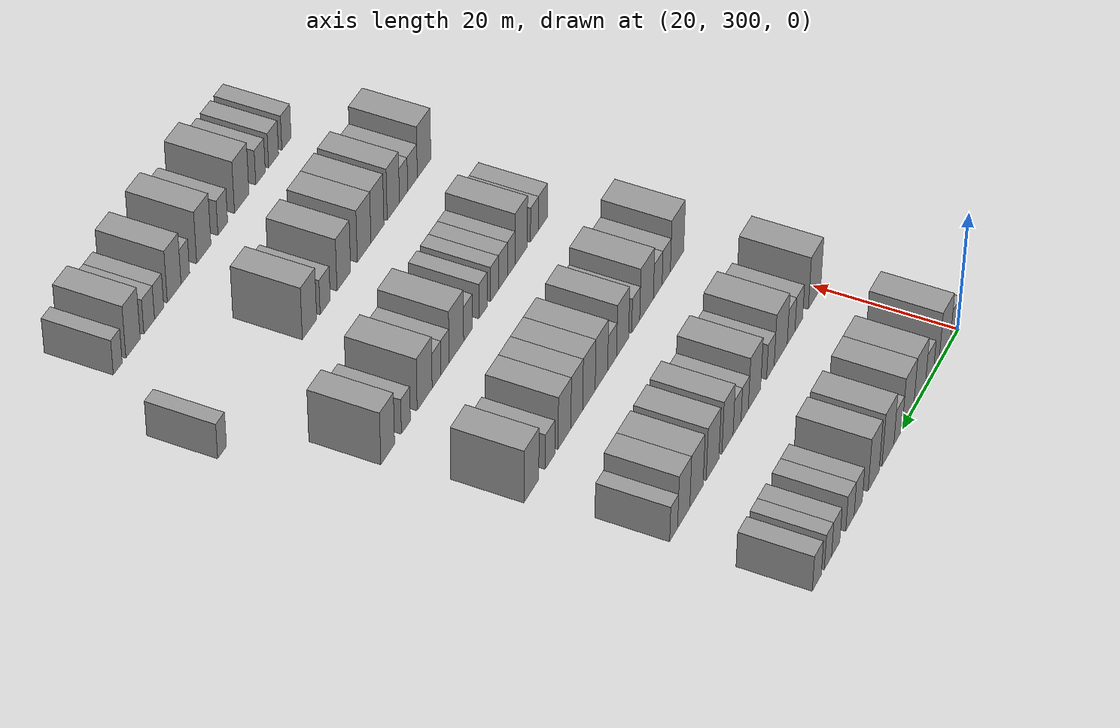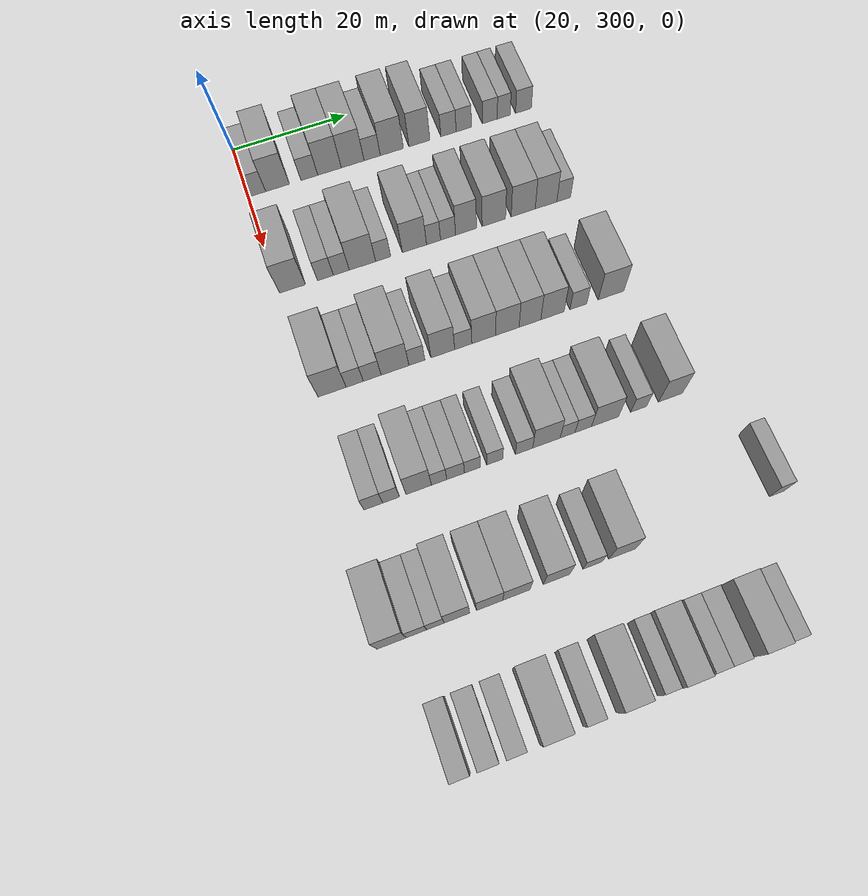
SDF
<sdf version="1.6">
 <world name="default">
  <model name="building_165">
   <static>1</static>
   <pose>25.0000 301.5888 0 0.000000 0.000000 0.000000</pose>
   <link name="link">
    <pose>0 0 3.00 0 0 0</pose>
    <collision name="collision"><geometry><box><size>10.0000 2.9189 6.0000</size></box></geometry></collision>
    <visual name="visual">
     <cast_shadows>0</cast_shadows>
     <geometry><box><size>10.0000 2.9189 6.0000</size></box></geometry>
     <material>
      <script>
       <uri>model://grey_wall/materials/scripts</uri>
       <uri>model://grey_wall/materials/textures</uri>
       <name>vrc/grey_wall</name>
      </script>
     </material>
    </visual>
   </link>
  </model>
  <model name="building_166">
   <static>1</static>
   <pose>25.0000 305.1051 0 0.000000 0.000000 0.000000</pose>
   <link name="link">
    <pose>0 0 4.50 0 0 0</pose>
    <collision name="collision"><geometry><box><size>10.0000 4.1137 9.0000</size></box></geometry></collision>
    <visual name="visual">
     <cast_shadows>0</cast_shadows>
     <geometry><box><size>10.0000 4.1137 9.0000</size></box></geometry>
     <material>
      <script>
       <uri>model://grey_wall/materials/scripts</uri>
       <uri>model://grey_wall/materials/textures</uri>
       <name>vrc/grey_wall</name>
      </script>
     </material>
    </visual>
   </link>
  </model>
  <model name="building_167">
   <static>1</static>
   <pose>25.0000 310.6389 0 0.000000 0.000000 0.000000</pose>
   <link name="link">
    <pose>0 0 3.00 0 0 0</pose>
    <collision name="collision"><geometry><box><size>10.0000 2.9540 6.0000</size></box></geometry></collision>
    <visual name="visual">
     <cast_shadows>0</cast_shadows>
     <geometry><box><size>10.0000 2.9540 6.0000</size></box></geometry>
     <material>
      <script>
       <uri>model://grey_wall/materials/scripts</uri>
       <uri>model://grey_wall/materials/textures</uri>
       <name>vrc/grey_wall</name>
      </script>
     </material>
    </visual>
   </link>
  </model>
  <model name="building_168">
   <static>1</static>
   <pose>25.0000 314.1917 0 0.000000 0.000000 0.000000</pose>
   <link name="link">
    <pose>0 0 4.50 0 0 0</pose>
    <collision name="collision"><geometry><box><size>10.0000 4.1515 9.0000</size></box></geometry></collision>
    <visual name="visual">
     <cast_shadows>0</cast_shadows>
     <geometry><box><size>10.0000 4.1515 9.0000</size></box></geometry>
     <material>
      <script>
       <uri>model://grey_wall/materials/scripts</uri>
       <uri>model://grey_wall/materials/textures</uri>
       <name>vrc/grey_wall</name>
      </script>
     </material>
    </visual>
   </link>
  </model>
  <model name="building_169">
   <static>1</static>
   <pose>25.0000 318.2860 0 0.000000 0.000000 0.000000</pose>
   <link name="link">
    <pose>0 0 4.50 0 0 0</pose>
    <collision name="collision"><geometry><box><size>10.0000 4.0372 9.0000</size></box></geometry></collision>
    <visual name="visual">
     <cast_shadows>0</cast_shadows>
     <geometry><box><size>10.0000 4.0372 9.0000</size></box></geometry>
     <material>
      <script>
       <uri>model://grey_wall/materials/scripts</uri>
       <uri>model://grey_wall/materials/textures</uri>
       <name>vrc/grey_wall</name>
      </script>
     </material>
    </visual>
   </link>
  </model>
  <model name="building_170">
   <static>1</static>
   <pose>25.0000 321.7532 0 0.000000 0.000000 0.000000</pose>
   <link name="link">
    <pose>0 0 3.00 0 0 0</pose>
    <collision name="collision"><geometry><box><size>10.0000 2.8972 6.0000</size></box></geometry></collision>
    <visual name="visual">
     <cast_shadows>0</cast_shadows>
     <geometry><box><size>10.0000 2.8972 6.0000</size></box></geometry>
     <material>
      <script>
       <uri>model://grey_wall/materials/scripts</uri>
       <uri>model://grey_wall/materials/textures</uri>
       <name>vrc/grey_wall</name>
      </script>
     </material>
    </visual>
   </link>
  </model>
  <model name="building_171">
   <static>1</static>
   <pose>25.0000 325.2684 0 0.000000 0.000000 0.000000</pose>
   <link name="link">
    <pose>0 0 4.50 0 0 0</pose>
    <collision name="collision"><geometry><box><size>10.0000 4.1330 9.0000</size></box></geometry></collision>
    <visual name="visual">
     <cast_shadows>0</cast_shadows>
     <geometry><box><size>10.0000 4.1330 9.0000</size></box></geometry>
     <material>
      <script>
       <uri>model://grey_wall/materials/scripts</uri>
       <uri>model://grey_wall/materials/textures</uri>
       <name>vrc/grey_wall</name>
      </script>
     </material>
    </visual>
   </link>
  </model>
  <model name="building_172">
   <static>1</static>
   <pose>25.0000 330.2317 0 0.000000 0.000000 0.000000</pose>
   <link name="link">
    <pose>0 0 4.50 0 0 0</pose>
    <collision name="collision"><geometry><box><size>10.0000 3.7937 9.0000</size></box></geometry></collision>
    <visual name="visual">
     <cast_shadows>0</cast_shadows>
     <geometry><box><size>10.0000 3.7937 9.0000</size></box></geometry>
     <material>
      <script>
       <uri>model://grey_wall/materials/scripts</uri>
       <uri>model://grey_wall/materials/textures</uri>
       <name>vrc/grey_wall</name>
      </script>
     </material>
    </visual>
   </link>
  </model>
  <model name="building_173">
   <static>1</static>
   <pose>25.0000 335.5223 0 0.000000 0.000000 0.000000</pose>
   <link name="link">
    <pose>0 0 3.00 0 0 0</pose>
    <collision name="collision"><geometry><box><size>10.0000 2.7874 6.0000</size></box></geometry></collision>
    <visual name="visual">
     <cast_shadows>0</cast_shadows>
     <geometry><box><size>10.0000 2.7874 6.0000</size></box></geometry>
     <material>
      <script>
       <uri>model://grey_wall/materials/scripts</uri>
       <uri>model://grey_wall/materials/textures</uri>
       <name>vrc/grey_wall</name>
      </script>
     </material>
    </visual>
   </link>
  </model>
  <model name="building_174">
   <static>1</static>
   <pose>25.0000 338.3214 0 0.000000 0.000000 0.000000</pose>
   <link name="link">
    <pose>0 0 3.00 0 0 0</pose>
    <collision name="collision"><geometry><box><size>10.0000 2.8108 6.0000</size></box></geometry></collision>
    <visual name="visual">
     <cast_shadows>0</cast_shadows>
     <geometry><box><size>10.0000 2.8108 6.0000</size></box></geometry>
     <material>
      <script>
       <uri>model://grey_wall/materials/scripts</uri>
       <uri>model://grey_wall/materials/textures</uri>
       <name>vrc/grey_wall</name>
      </script>
     </material>
    </visual>
   </link>
  </model>
  <model name="building_175">
   <static>1</static>
   <pose>25.0000 343.1128 0 0.000000 0.000000 0.000000</pose>
   <link name="link">
    <pose>0 0 3.00 0 0 0</pose>
    <collision name="collision"><geometry><box><size>10.0000 2.7720 6.0000</size></box></geometry></collision>
    <visual name="visual">
     <cast_shadows>0</cast_shadows>
     <geometry><box><size>10.0000 2.7720 6.0000</size></box></geometry>
     <material>
      <script>
       <uri>model://grey_wall/materials/scripts</uri>
       <uri>model://grey_wall/materials/textures</uri>
       <name>vrc/grey_wall</name>
      </script>
     </material>
    </visual>
   </link>
  </model>
  <model name="building_176">
   <static>1</static>
   <pose>25.0000 345.7003 0 0.000000 0.000000 0.000000</pose>
   <link name="link">
    <pose>0 0 3.00 0 0 0</pose>
    <collision name="collision"><geometry><box><size>10.0000 2.4030 6.0000</size></box></geometry></collision>
    <visual name="visual">
     <cast_shadows>0</cast_shadows>
     <geometry><box><size>10.0000 2.4030 6.0000</size></box></geometry>
     <material>
      <script>
       <uri>model://grey_wall/materials/scripts</uri>
       <uri>model://grey_wall/materials/textures</uri>
       <name>vrc/grey_wall</name>
      </script>
     </material>
    </visual>
   </link>
  </model>
  <model name="building_177">
   <static>1</static>
   <pose>25.0000 349.3713 0 0.000000 0.000000 0.000000</pose>
   <link name="link">
    <pose>0 0 3.00 0 0 0</pose>
    <collision name="collision"><geometry><box><size>10.0000 2.9388 6.0000</size></box></geometry></collision>
    <visual name="visual">
     <cast_shadows>0</cast_shadows>
     <geometry><box><size>10.0000 2.9388 6.0000</size></box></geometry>
     <material>
      <script>
       <uri>model://grey_wall/materials/scripts</uri>
       <uri>model://grey_wall/materials/textures</uri>
       <name>vrc/grey_wall</name>
      </script>
     </material>
    </visual>
   </link>
  </model>
  <model name="building_333">
   <static>1</static>
   <pose>44.0000 302.2389 0 0.000000 0.000000 0.000000</pose>
   <link name="link">
    <pose>0 0 4.50 0 0 0</pose>
    <collision name="collision"><geometry><box><size>10.0000 4.3135 9.0000</size></box></geometry></collision>
    <visual name="visual">
     <cast_shadows>0</cast_shadows>
     <geometry><box><size>10.0000 4.3135 9.0000</size></box></geometry>
     <material>
      <script>
       <uri>model://grey_wall/materials/scripts</uri>
       <uri>model://grey_wall/materials/textures</uri>
       <name>vrc/grey_wall</name>
      </script>
     </material>
    </visual>
   </link>
  </model>
  <model name="building_334">
   <static>1</static>
   <pose>44.0000 307.7300 0 0.000000 0.000000 0.000000</pose>
   <link name="link">
    <pose>0 0 3.00 0 0 0</pose>
    <collision name="collision"><geometry><box><size>10.0000 2.6686 6.0000</size></box></geometry></collision>
    <visual name="visual">
     <cast_shadows>0</cast_shadows>
     <geometry><box><size>10.0000 2.6686 6.0000</size></box></geometry>
     <material>
      <script>
       <uri>model://grey_wall/materials/scripts</uri>
       <uri>model://grey_wall/materials/textures</uri>
       <name>vrc/grey_wall</name>
      </script>
     </material>
    </visual>
   </link>
  </model>
  <model name="building_335">
   <static>1</static>
   <pose>44.0000 310.4001 0 0.000000 0.000000 0.000000</pose>
   <link name="link">
    <pose>0 0 3.00 0 0 0</pose>
    <collision name="collision"><geometry><box><size>10.0000 2.6716 6.0000</size></box></geometry></collision>
    <visual name="visual">
     <cast_shadows>0</cast_shadows>
     <geometry><box><size>10.0000 2.6716 6.0000</size></box></geometry>
     <material>
      <script>
       <uri>model://grey_wall/materials/scripts</uri>
       <uri>model://grey_wall/materials/textures</uri>
       <name>vrc/grey_wall</name>
      </script>
     </material>
    </visual>
   </link>
  </model>
  <model name="building_336">
   <static>1</static>
   <pose>44.0000 313.9701 0 0.000000 0.000000 0.000000</pose>
   <link name="link">
    <pose>0 0 4.50 0 0 0</pose>
    <collision name="collision"><geometry><box><size>10.0000 4.4685 9.0000</size></box></geometry></collision>
    <visual name="visual">
     <cast_shadows>0</cast_shadows>
     <geometry><box><size>10.0000 4.4685 9.0000</size></box></geometry>
     <material>
      <script>
       <uri>model://grey_wall/materials/scripts</uri>
       <uri>model://grey_wall/materials/textures</uri>
       <name>vrc/grey_wall</name>
      </script>
     </material>
    </visual>
   </link>
  </model>
  <model name="building_337">
   <static>1</static>
   <pose>44.0000 317.4843 0 0.000000 0.000000 0.000000</pose>
   <link name="link">
    <pose>0 0 3.00 0 0 0</pose>
    <collision name="collision"><geometry><box><size>10.0000 2.5599 6.0000</size></box></geometry></collision>
    <visual name="visual">
     <cast_shadows>0</cast_shadows>
     <geometry><box><size>10.0000 2.5599 6.0000</size></box></geometry>
     <material>
      <script>
       <uri>model://grey_wall/materials/scripts</uri>
       <uri>model://grey_wall/materials/textures</uri>
       <name>vrc/grey_wall</name>
      </script>
     </material>
    </visual>
   </link>
  </model>
  <model name="building_338">
   <static>1</static>
   <pose>44.0000 322.8418 0 0.000000 0.000000 0.000000</pose>
   <link name="link">
    <pose>0 0 4.50 0 0 0</pose>
    <collision name="collision"><geometry><box><size>10.0000 4.1550 9.0000</size></box></geometry></collision>
    <visual name="visual">
     <cast_shadows>0</cast_shadows>
     <geometry><box><size>10.0000 4.1550 9.0000</size></box></geometry>
     <material>
      <script>
       <uri>model://grey_wall/materials/scripts</uri>
       <uri>model://grey_wall/materials/textures</uri>
       <name>vrc/grey_wall</name>
      </script>
     </material>
    </visual>
   </link>
  </model>
  <model name="building_339">
   <static>1</static>
   <pose>44.0000 326.1313 0 0.000000 0.000000 0.000000</pose>
   <link name="link">
    <pose>0 0 3.00 0 0 0</pose>
    <collision name="collision"><geometry><box><size>10.0000 2.4240 6.0000</size></box></geometry></collision>
    <visual name="visual">
     <cast_shadows>0</cast_shadows>
     <geometry><box><size>10.0000 2.4240 6.0000</size></box></geometry>
     <material>
      <script>
       <uri>model://grey_wall/materials/scripts</uri>
       <uri>model://grey_wall/materials/textures</uri>
       <name>vrc/grey_wall</name>
      </script>
     </material>
    </visual>
   </link>
  </model>
  <model name="building_340">
   <static>1</static>
   <pose>44.0000 328.6502 0 0.000000 0.000000 0.000000</pose>
   <link name="link">
    <pose>0 0 3.00 0 0 0</pose>
    <collision name="collision"><geometry><box><size>10.0000 2.6138 6.0000</size></box></geometry></collision>
    <visual name="visual">
     <cast_shadows>0</cast_shadows>
     <geometry><box><size>10.0000 2.6138 6.0000</size></box></geometry>
     <material>
      <script>
       <uri>model://grey_wall/materials/scripts</uri>
       <uri>model://grey_wall/materials/textures</uri>
       <name>vrc/grey_wall</name>
      </script>
     </material>
    </visual>
   </link>
  </model>
  <model name="building_341">
   <static>1</static>
   <pose>44.0000 331.7780 0 0.000000 0.000000 0.000000</pose>
   <link name="link">
    <pose>0 0 4.50 0 0 0</pose>
    <collision name="collision"><geometry><box><size>10.0000 3.6419 9.0000</size></box></geometry></collision>
    <visual name="visual">
     <cast_shadows>0</cast_shadows>
     <geometry><box><size>10.0000 3.6419 9.0000</size></box></geometry>
     <material>
      <script>
       <uri>model://grey_wall/materials/scripts</uri>
       <uri>model://grey_wall/materials/textures</uri>
       <name>vrc/grey_wall</name>
      </script>
     </material>
    </visual>
   </link>
  </model>
  <model name="building_342">
   <static>1</static>
   <pose>44.0000 336.6580 0 0.000000 0.000000 0.000000</pose>
   <link name="link">
    <pose>0 0 4.50 0 0 0</pose>
    <collision name="collision"><geometry><box><size>10.0000 4.1180 9.0000</size></box></geometry></collision>
    <visual name="visual">
     <cast_shadows>0</cast_shadows>
     <geometry><box><size>10.0000 4.1180 9.0000</size></box></geometry>
     <material>
      <script>
       <uri>model://grey_wall/materials/scripts</uri>
       <uri>model://grey_wall/materials/textures</uri>
       <name>vrc/grey_wall</name>
      </script>
     </material>
    </visual>
   </link>
  </model>
  <model name="building_343">
   <static>1</static>
   <pose>44.0000 341.8525 0 0.000000 0.000000 0.000000</pose>
   <link name="link">
    <pose>0 0 4.50 0 0 0</pose>
    <collision name="collision"><geometry><box><size>10.0000 4.2711 9.0000</size></box></geometry></collision>
    <visual name="visual">
     <cast_shadows>0</cast_shadows>
     <geometry><box><size>10.0000 4.2711 9.0000</size></box></geometry>
     <material>
      <script>
       <uri>model://grey_wall/materials/scripts</uri>
       <uri>model://grey_wall/materials/textures</uri>
       <name>vrc/grey_wall</name>
      </script>
     </material>
    </visual>
   </link>
  </model>
  <model name="building_344">
   <static>1</static>
   <pose>44.0000 345.9261 0 0.000000 0.000000 0.000000</pose>
   <link name="link">
    <pose>0 0 4.50 0 0 0</pose>
    <collision name="collision"><geometry><box><size>10.0000 3.8761 9.0000</size></box></geometry></collision>
    <visual name="visual">
     <cast_shadows>0</cast_shadows>
     <geometry><box><size>10.0000 3.8761 9.0000</size></box></geometry>
     <material>
      <script>
       <uri>model://grey_wall/materials/scripts</uri>
       <uri>model://grey_wall/materials/textures</uri>
       <name>vrc/grey_wall</name>
      </script>
     </material>
    </visual>
   </link>
  </model>
  <model name="building_345">
   <static>1</static>
   <pose>44.0000 349.1014 0 0.000000 0.000000 0.000000</pose>
   <link name="link">
    <pose>0 0 3.00 0 0 0</pose>
    <collision name="collision"><geometry><box><size>10.0000 2.4744 6.0000</size></box></geometry></collision>
    <visual name="visual">
     <cast_shadows>0</cast_shadows>
     <geometry><box><size>10.0000 2.4744 6.0000</size></box></geometry>
     <material>
      <script>
       <uri>model://grey_wall/materials/scripts</uri>
       <uri>model://grey_wall/materials/textures</uri>
       <name>vrc/grey_wall</name>
      </script>
     </material>
    </visual>
   </link>
  </model>
  <model name="building_508">
   <static>1</static>
   <pose>63.0000 303.0617 0 0.000000 0.000000 0.000000</pose>
   <link name="link">
    <pose>0 0 4.50 0 0 0</pose>
    <collision name="collision"><geometry><box><size>10.0000 4.4870 9.0000</size></box></geometry></collision>
    <visual name="visual">
     <cast_shadows>0</cast_shadows>
     <geometry><box><size>10.0000 4.4870 9.0000</size></box></geometry>
     <material>
      <script>
       <uri>model://grey_wall/materials/scripts</uri>
       <uri>model://grey_wall/materials/textures</uri>
       <name>vrc/grey_wall</name>
      </script>
     </material>
    </visual>
   </link>
  </model>
  <model name="building_509">
   <static>1</static>
   <pose>63.0000 306.6799 0 0.000000 0.000000 0.000000</pose>
   <link name="link">
    <pose>0 0 3.00 0 0 0</pose>
    <collision name="collision"><geometry><box><size>10.0000 2.7496 6.0000</size></box></geometry></collision>
    <visual name="visual">
     <cast_shadows>0</cast_shadows>
     <geometry><box><size>10.0000 2.7496 6.0000</size></box></geometry>
     <material>
      <script>
       <uri>model://grey_wall/materials/scripts</uri>
       <uri>model://grey_wall/materials/textures</uri>
       <name>vrc/grey_wall</name>
      </script>
     </material>
    </visual>
   </link>
  </model>
  <model name="building_510">
   <static>1</static>
   <pose>63.0000 309.4983 0 0.000000 0.000000 0.000000</pose>
   <link name="link">
    <pose>0 0 3.00 0 0 0</pose>
    <collision name="collision"><geometry><box><size>10.0000 2.8872 6.0000</size></box></geometry></collision>
    <visual name="visual">
     <cast_shadows>0</cast_shadows>
     <geometry><box><size>10.0000 2.8872 6.0000</size></box></geometry>
     <material>
      <script>
       <uri>model://grey_wall/materials/scripts</uri>
       <uri>model://grey_wall/materials/textures</uri>
       <name>vrc/grey_wall</name>
      </script>
     </material>
    </visual>
   </link>
  </model>
  <model name="building_511">
   <static>1</static>
   <pose>63.0000 313.1857 0 0.000000 0.000000 0.000000</pose>
   <link name="link">
    <pose>0 0 4.50 0 0 0</pose>
    <collision name="collision"><geometry><box><size>10.0000 4.4875 9.0000</size></box></geometry></collision>
    <visual name="visual">
     <cast_shadows>0</cast_shadows>
     <geometry><box><size>10.0000 4.4875 9.0000</size></box></geometry>
     <material>
      <script>
       <uri>model://grey_wall/materials/scripts</uri>
       <uri>model://grey_wall/materials/textures</uri>
       <name>vrc/grey_wall</name>
      </script>
     </material>
    </visual>
   </link>
  </model>
  <model name="building_512">
   <static>1</static>
   <pose>63.0000 316.7316 0 0.000000 0.000000 0.000000</pose>
   <link name="link">
    <pose>0 0 3.00 0 0 0</pose>
    <collision name="collision"><geometry><box><size>10.0000 2.6043 6.0000</size></box></geometry></collision>
    <visual name="visual">
     <cast_shadows>0</cast_shadows>
     <geometry><box><size>10.0000 2.6043 6.0000</size></box></geometry>
     <material>
      <script>
       <uri>model://grey_wall/materials/scripts</uri>
       <uri>model://grey_wall/materials/textures</uri>
       <name>vrc/grey_wall</name>
      </script>
     </material>
    </visual>
   </link>
  </model>
  <model name="building_513">
   <static>1</static>
   <pose>63.0000 320.9885 0 0.000000 0.000000 0.000000</pose>
   <link name="link">
    <pose>0 0 4.50 0 0 0</pose>
    <collision name="collision"><geometry><box><size>10.0000 3.9094 9.0000</size></box></geometry></collision>
    <visual name="visual">
     <cast_shadows>0</cast_shadows>
     <geometry><box><size>10.0000 3.9094 9.0000</size></box></geometry>
     <material>
      <script>
       <uri>model://grey_wall/materials/scripts</uri>
       <uri>model://grey_wall/materials/textures</uri>
       <name>vrc/grey_wall</name>
      </script>
     </material>
    </visual>
   </link>
  </model>
  <model name="building_514">
   <static>1</static>
   <pose>63.0000 324.3630 0 0.000000 0.000000 0.000000</pose>
   <link name="link">
    <pose>0 0 3.00 0 0 0</pose>
    <collision name="collision"><geometry><box><size>10.0000 2.8396 6.0000</size></box></geometry></collision>
    <visual name="visual">
     <cast_shadows>0</cast_shadows>
     <geometry><box><size>10.0000 2.8396 6.0000</size></box></geometry>
     <material>
      <script>
       <uri>model://grey_wall/materials/scripts</uri>
       <uri>model://grey_wall/materials/textures</uri>
       <name>vrc/grey_wall</name>
      </script>
     </material>
    </visual>
   </link>
  </model>
  <model name="building_515">
   <static>1</static>
   <pose>63.0000 327.7666 0 0.000000 0.000000 0.000000</pose>
   <link name="link">
    <pose>0 0 4.50 0 0 0</pose>
    <collision name="collision"><geometry><box><size>10.0000 3.9677 9.0000</size></box></geometry></collision>
    <visual name="visual">
     <cast_shadows>0</cast_shadows>
     <geometry><box><size>10.0000 3.9677 9.0000</size></box></geometry>
     <material>
      <script>
       <uri>model://grey_wall/materials/scripts</uri>
       <uri>model://grey_wall/materials/textures</uri>
       <name>vrc/grey_wall</name>
      </script>
     </material>
    </visual>
   </link>
  </model>
  <model name="building_516">
   <static>1</static>
   <pose>63.0000 331.7200 0 0.000000 0.000000 0.000000</pose>
   <link name="link">
    <pose>0 0 4.50 0 0 0</pose>
    <collision name="collision"><geometry><box><size>10.0000 3.9392 9.0000</size></box></geometry></collision>
    <visual name="visual">
     <cast_shadows>0</cast_shadows>
     <geometry><box><size>10.0000 3.9392 9.0000</size></box></geometry>
     <material>
      <script>
       <uri>model://grey_wall/materials/scripts</uri>
       <uri>model://grey_wall/materials/textures</uri>
       <name>vrc/grey_wall</name>
      </script>
     </material>
    </visual>
   </link>
  </model>
  <model name="building_517">
   <static>1</static>
   <pose>63.0000 335.5295 0 0.000000 0.000000 0.000000</pose>
   <link name="link">
    <pose>0 0 4.50 0 0 0</pose>
    <collision name="collision"><geometry><box><size>10.0000 3.6798 9.0000</size></box></geometry></collision>
    <visual name="visual">
     <cast_shadows>0</cast_shadows>
     <geometry><box><size>10.0000 3.6798 9.0000</size></box></geometry>
     <material>
      <script>
       <uri>model://grey_wall/materials/scripts</uri>
       <uri>model://grey_wall/materials/textures</uri>
       <name>vrc/grey_wall</name>
      </script>
     </material>
    </visual>
   </link>
  </model>
  <model name="building_518">
   <static>1</static>
   <pose>63.0000 339.3479 0 0.000000 0.000000 0.000000</pose>
   <link name="link">
    <pose>0 0 4.50 0 0 0</pose>
    <collision name="collision"><geometry><box><size>10.0000 3.9569 9.0000</size></box></geometry></collision>
    <visual name="visual">
     <cast_shadows>0</cast_shadows>
     <geometry><box><size>10.0000 3.9569 9.0000</size></box></geometry>
     <material>
      <script>
       <uri>model://grey_wall/materials/scripts</uri>
       <uri>model://grey_wall/materials/textures</uri>
       <name>vrc/grey_wall</name>
      </script>
     </material>
    </visual>
   </link>
  </model>
  <model name="building_519">
   <static>1</static>
   <pose>63.0000 343.7659 0 0.000000 0.000000 0.000000</pose>
   <link name="link">
    <pose>0 0 3.00 0 0 0</pose>
    <collision name="collision"><geometry><box><size>10.0000 2.8791 6.0000</size></box></geometry></collision>
    <visual name="visual">
     <cast_shadows>0</cast_shadows>
     <geometry><box><size>10.0000 2.8791 6.0000</size></box></geometry>
     <material>
      <script>
       <uri>model://grey_wall/materials/scripts</uri>
       <uri>model://grey_wall/materials/textures</uri>
       <name>vrc/grey_wall</name>
      </script>
     </material>
    </visual>
   </link>
  </model>
  <model name="building_520">
   <static>1</static>
   <pose>63.0000 349.4359 0 0.000000 0.000000 0.000000</pose>
   <link name="link">
    <pose>0 0 4.50 0 0 0</pose>
    <collision name="collision"><geometry><box><size>10.0000 4.4609 9.0000</size></box></geometry></collision>
    <visual name="visual">
     <cast_shadows>0</cast_shadows>
     <geometry><box><size>10.0000 4.4609 9.0000</size></box></geometry>
     <material>
      <script>
       <uri>model://grey_wall/materials/scripts</uri>
       <uri>model://grey_wall/materials/textures</uri>
       <name>vrc/grey_wall</name>
      </script>
     </material>
    </visual>
   </link>
  </model>
  <model name="building_681">
   <static>1</static>
   <pose>82.0000 303.5304 0 0.000000 0.000000 0.000000</pose>
   <link name="link">
    <pose>0 0 3.00 0 0 0</pose>
    <collision name="collision"><geometry><box><size>10.0000 2.8734 6.0000</size></box></geometry></collision>
    <visual name="visual">
     <cast_shadows>0</cast_shadows>
     <geometry><box><size>10.0000 2.8734 6.0000</size></box></geometry>
     <material>
      <script>
       <uri>model://grey_wall/materials/scripts</uri>
       <uri>model://grey_wall/materials/textures</uri>
       <name>vrc/grey_wall</name>
      </script>
     </material>
    </visual>
   </link>
  </model>
  <model name="building_682">
   <static>1</static>
   <pose>82.0000 306.2466 0 0.000000 0.000000 0.000000</pose>
   <link name="link">
    <pose>0 0 3.00 0 0 0</pose>
    <collision name="collision"><geometry><box><size>10.0000 2.5589 6.0000</size></box></geometry></collision>
    <visual name="visual">
     <cast_shadows>0</cast_shadows>
     <geometry><box><size>10.0000 2.5589 6.0000</size></box></geometry>
     <material>
      <script>
       <uri>model://grey_wall/materials/scripts</uri>
       <uri>model://grey_wall/materials/textures</uri>
       <name>vrc/grey_wall</name>
      </script>
     </material>
    </visual>
   </link>
  </model>
  <model name="building_683">
   <static>1</static>
   <pose>82.0000 310.4907 0 0.000000 0.000000 0.000000</pose>
   <link name="link">
    <pose>0 0 4.50 0 0 0</pose>
    <collision name="collision"><geometry><box><size>10.0000 3.9294 9.0000</size></box></geometry></collision>
    <visual name="visual">
     <cast_shadows>0</cast_shadows>
     <geometry><box><size>10.0000 3.9294 9.0000</size></box></geometry>
     <material>
      <script>
       <uri>model://grey_wall/materials/scripts</uri>
       <uri>model://grey_wall/materials/textures</uri>
       <name>vrc/grey_wall</name>
      </script>
     </material>
    </visual>
   </link>
  </model>
  <model name="building_684">
   <static>1</static>
   <pose>82.0000 313.6562 0 0.000000 0.000000 0.000000</pose>
   <link name="link">
    <pose>0 0 3.00 0 0 0</pose>
    <collision name="collision"><geometry><box><size>10.0000 2.4016 6.0000</size></box></geometry></collision>
    <visual name="visual">
     <cast_shadows>0</cast_shadows>
     <geometry><box><size>10.0000 2.4016 6.0000</size></box></geometry>
     <material>
      <script>
       <uri>model://grey_wall/materials/scripts</uri>
       <uri>model://grey_wall/materials/textures</uri>
       <name>vrc/grey_wall</name>
      </script>
     </material>
    </visual>
   </link>
  </model>
  <model name="building_685">
   <static>1</static>
   <pose>82.0000 316.2401 0 0.000000 0.000000 0.000000</pose>
   <link name="link">
    <pose>0 0 3.00 0 0 0</pose>
    <collision name="collision"><geometry><box><size>10.0000 2.7661 6.0000</size></box></geometry></collision>
    <visual name="visual">
     <cast_shadows>0</cast_shadows>
     <geometry><box><size>10.0000 2.7661 6.0000</size></box></geometry>
     <material>
      <script>
       <uri>model://grey_wall/materials/scripts</uri>
       <uri>model://grey_wall/materials/textures</uri>
       <name>vrc/grey_wall</name>
      </script>
     </material>
    </visual>
   </link>
  </model>
  <model name="building_686">
   <static>1</static>
   <pose>82.0000 318.8673 0 0.000000 0.000000 0.000000</pose>
   <link name="link">
    <pose>0 0 3.00 0 0 0</pose>
    <collision name="collision"><geometry><box><size>10.0000 2.4885 6.0000</size></box></geometry></collision>
    <visual name="visual">
     <cast_shadows>0</cast_shadows>
     <geometry><box><size>10.0000 2.4885 6.0000</size></box></geometry>
     <material>
      <script>
       <uri>model://grey_wall/materials/scripts</uri>
       <uri>model://grey_wall/materials/textures</uri>
       <name>vrc/grey_wall</name>
      </script>
     </material>
    </visual>
   </link>
  </model>
  <model name="building_687">
   <static>1</static>
   <pose>82.0000 322.3942 0 0.000000 0.000000 0.000000</pose>
   <link name="link">
    <pose>0 0 3.00 0 0 0</pose>
    <collision name="collision"><geometry><box><size>10.0000 2.5652 6.0000</size></box></geometry></collision>
    <visual name="visual">
     <cast_shadows>0</cast_shadows>
     <geometry><box><size>10.0000 2.5652 6.0000</size></box></geometry>
     <material>
      <script>
       <uri>model://grey_wall/materials/scripts</uri>
       <uri>model://grey_wall/materials/textures</uri>
       <name>vrc/grey_wall</name>
      </script>
     </material>
    </visual>
   </link>
  </model>
  <model name="building_688">
   <static>1</static>
   <pose>82.0000 327.0456 0 0.000000 0.000000 0.000000</pose>
   <link name="link">
    <pose>0 0 3.00 0 0 0</pose>
    <collision name="collision"><geometry><box><size>10.0000 2.7375 6.0000</size></box></geometry></collision>
    <visual name="visual">
     <cast_shadows>0</cast_shadows>
     <geometry><box><size>10.0000 2.7375 6.0000</size></box></geometry>
     <material>
      <script>
       <uri>model://grey_wall/materials/scripts</uri>
       <uri>model://grey_wall/materials/textures</uri>
       <name>vrc/grey_wall</name>
      </script>
     </material>
    </visual>
   </link>
  </model>
  <model name="building_689">
   <static>1</static>
   <pose>82.0000 330.6315 0 0.000000 0.000000 0.000000</pose>
   <link name="link">
    <pose>0 0 4.50 0 0 0</pose>
    <collision name="collision"><geometry><box><size>10.0000 4.4342 9.0000</size></box></geometry></collision>
    <visual name="visual">
     <cast_shadows>0</cast_shadows>
     <geometry><box><size>10.0000 4.4342 9.0000</size></box></geometry>
     <material>
      <script>
       <uri>model://grey_wall/materials/scripts</uri>
       <uri>model://grey_wall/materials/textures</uri>
       <name>vrc/grey_wall</name>
      </script>
     </material>
    </visual>
   </link>
  </model>
  <model name="building_690">
   <static>1</static>
   <pose>82.0000 334.0553 0 0.000000 0.000000 0.000000</pose>
   <link name="link">
    <pose>0 0 3.00 0 0 0</pose>
    <collision name="collision"><geometry><box><size>10.0000 2.4134 6.0000</size></box></geometry></collision>
    <visual name="visual">
     <cast_shadows>0</cast_shadows>
     <geometry><box><size>10.0000 2.4134 6.0000</size></box></geometry>
     <material>
      <script>
       <uri>model://grey_wall/materials/scripts</uri>
       <uri>model://grey_wall/materials/textures</uri>
       <name>vrc/grey_wall</name>
      </script>
     </material>
    </visual>
   </link>
  </model>
  <model name="building_691">
   <static>1</static>
   <pose>82.0000 336.5985 0 0.000000 0.000000 0.000000</pose>
   <link name="link">
    <pose>0 0 3.00 0 0 0</pose>
    <collision name="collision"><geometry><box><size>10.0000 2.6731 6.0000</size></box></geometry></collision>
    <visual name="visual">
     <cast_shadows>0</cast_shadows>
     <geometry><box><size>10.0000 2.6731 6.0000</size></box></geometry>
     <material>
      <script>
       <uri>model://grey_wall/materials/scripts</uri>
       <uri>model://grey_wall/materials/textures</uri>
       <name>vrc/grey_wall</name>
      </script>
     </material>
    </visual>
   </link>
  </model>
  <model name="building_692">
   <static>1</static>
   <pose>82.0000 340.1604 0 0.000000 0.000000 0.000000</pose>
   <link name="link">
    <pose>0 0 4.50 0 0 0</pose>
    <collision name="collision"><geometry><box><size>10.0000 4.4508 9.0000</size></box></geometry></collision>
    <visual name="visual">
     <cast_shadows>0</cast_shadows>
     <geometry><box><size>10.0000 4.4508 9.0000</size></box></geometry>
     <material>
      <script>
       <uri>model://grey_wall/materials/scripts</uri>
       <uri>model://grey_wall/materials/textures</uri>
       <name>vrc/grey_wall</name>
      </script>
     </material>
    </visual>
   </link>
  </model>
  <model name="building_693">
   <static>1</static>
   <pose>82.0000 345.6992 0 0.000000 0.000000 0.000000</pose>
   <link name="link">
    <pose>0 0 3.00 0 0 0</pose>
    <collision name="collision"><geometry><box><size>10.0000 2.6267 6.0000</size></box></geometry></collision>
    <visual name="visual">
     <cast_shadows>0</cast_shadows>
     <geometry><box><size>10.0000 2.6267 6.0000</size></box></geometry>
     <material>
      <script>
       <uri>model://grey_wall/materials/scripts</uri>
       <uri>model://grey_wall/materials/textures</uri>
       <name>vrc/grey_wall</name>
      </script>
     </material>
    </visual>
   </link>
  </model>
  <model name="building_694">
   <static>1</static>
   <pose>82.0000 351.0036 0 0.000000 0.000000 0.000000</pose>
   <link name="link">
    <pose>0 0 4.50 0 0 0</pose>
    <collision name="collision"><geometry><box><size>10.0000 3.9822 9.0000</size></box></geometry></collision>
    <visual name="visual">
     <cast_shadows>0</cast_shadows>
     <geometry><box><size>10.0000 3.9822 9.0000</size></box></geometry>
     <material>
      <script>
       <uri>model://grey_wall/materials/scripts</uri>
       <uri>model://grey_wall/materials/textures</uri>
       <name>vrc/grey_wall</name>
      </script>
     </material>
    </visual>
   </link>
  </model>
  <model name="building_854">
   <static>1</static>
   <pose>101.0000 300.0385 0 0.000000 0.000000 0.000000</pose>
   <link name="link">
    <pose>0 0 4.50 0 0 0</pose>
    <collision name="collision"><geometry><box><size>10.0000 4.2359 9.0000</size></box></geometry></collision>
    <visual name="visual">
     <cast_shadows>0</cast_shadows>
     <geometry><box><size>10.0000 4.2359 9.0000</size></box></geometry>
     <material>
      <script>
       <uri>model://grey_wall/materials/scripts</uri>
       <uri>model://grey_wall/materials/textures</uri>
       <name>vrc/grey_wall</name>
      </script>
     </material>
    </visual>
   </link>
  </model>
  <model name="building_855">
   <static>1</static>
   <pose>101.0000 303.6534 0 0.000000 0.000000 0.000000</pose>
   <link name="link">
    <pose>0 0 3.00 0 0 0</pose>
    <collision name="collision"><geometry><box><size>10.0000 2.9938 6.0000</size></box></geometry></collision>
    <visual name="visual">
     <cast_shadows>0</cast_shadows>
     <geometry><box><size>10.0000 2.9938 6.0000</size></box></geometry>
     <material>
      <script>
       <uri>model://grey_wall/materials/scripts</uri>
       <uri>model://grey_wall/materials/textures</uri>
       <name>vrc/grey_wall</name>
      </script>
     </material>
    </visual>
   </link>
  </model>
  <model name="building_856">
   <static>1</static>
   <pose>101.0000 306.4250 0 0.000000 0.000000 0.000000</pose>
   <link name="link">
    <pose>0 0 3.00 0 0 0</pose>
    <collision name="collision"><geometry><box><size>10.0000 2.5495 6.0000</size></box></geometry></collision>
    <visual name="visual">
     <cast_shadows>0</cast_shadows>
     <geometry><box><size>10.0000 2.5495 6.0000</size></box></geometry>
     <material>
      <script>
       <uri>model://grey_wall/materials/scripts</uri>
       <uri>model://grey_wall/materials/textures</uri>
       <name>vrc/grey_wall</name>
      </script>
     </material>
    </visual>
   </link>
  </model>
  <model name="building_857">
   <static>1</static>
   <pose>101.0000 309.5758 0 0.000000 0.000000 0.000000</pose>
   <link name="link">
    <pose>0 0 4.50 0 0 0</pose>
    <collision name="collision"><geometry><box><size>10.0000 3.7521 9.0000</size></box></geometry></collision>
    <visual name="visual">
     <cast_shadows>0</cast_shadows>
     <geometry><box><size>10.0000 3.7521 9.0000</size></box></geometry>
     <material>
      <script>
       <uri>model://grey_wall/materials/scripts</uri>
       <uri>model://grey_wall/materials/textures</uri>
       <name>vrc/grey_wall</name>
      </script>
     </material>
    </visual>
   </link>
  </model>
  <model name="building_858">
   <static>1</static>
   <pose>101.0000 314.4181 0 0.000000 0.000000 0.000000</pose>
   <link name="link">
    <pose>0 0 4.50 0 0 0</pose>
    <collision name="collision"><geometry><box><size>10.0000 3.9325 9.0000</size></box></geometry></collision>
    <visual name="visual">
     <cast_shadows>0</cast_shadows>
     <geometry><box><size>10.0000 3.9325 9.0000</size></box></geometry>
     <material>
      <script>
       <uri>model://grey_wall/materials/scripts</uri>
       <uri>model://grey_wall/materials/textures</uri>
       <name>vrc/grey_wall</name>
      </script>
     </material>
    </visual>
   </link>
  </model>
  <model name="building_859">
   <static>1</static>
   <pose>101.0000 318.4368 0 0.000000 0.000000 0.000000</pose>
   <link name="link">
    <pose>0 0 4.50 0 0 0</pose>
    <collision name="collision"><geometry><box><size>10.0000 4.1048 9.0000</size></box></geometry></collision>
    <visual name="visual">
     <cast_shadows>0</cast_shadows>
     <geometry><box><size>10.0000 4.1048 9.0000</size></box></geometry>
     <material>
      <script>
       <uri>model://grey_wall/materials/scripts</uri>
       <uri>model://grey_wall/materials/textures</uri>
       <name>vrc/grey_wall</name>
      </script>
     </material>
    </visual>
   </link>
  </model>
  <model name="building_860">
   <static>1</static>
   <pose>101.0000 324.5157 0 0.000000 0.000000 0.000000</pose>
   <link name="link">
    <pose>0 0 4.50 0 0 0</pose>
    <collision name="collision"><geometry><box><size>10.0000 4.0529 9.0000</size></box></geometry></collision>
    <visual name="visual">
     <cast_shadows>0</cast_shadows>
     <geometry><box><size>10.0000 4.0529 9.0000</size></box></geometry>
     <material>
      <script>
       <uri>model://grey_wall/materials/scripts</uri>
       <uri>model://grey_wall/materials/textures</uri>
       <name>vrc/grey_wall</name>
      </script>
     </material>
    </visual>
   </link>
  </model>
  <model name="building_861">
   <static>1</static>
   <pose>101.0000 330.0297 0 0.000000 0.000000 0.000000</pose>
   <link name="link">
    <pose>0 0 3.00 0 0 0</pose>
    <collision name="collision"><geometry><box><size>10.0000 2.9751 6.0000</size></box></geometry></collision>
    <visual name="visual">
     <cast_shadows>0</cast_shadows>
     <geometry><box><size>10.0000 2.9751 6.0000</size></box></geometry>
     <material>
      <script>
       <uri>model://grey_wall/materials/scripts</uri>
       <uri>model://grey_wall/materials/textures</uri>
       <name>vrc/grey_wall</name>
      </script>
     </material>
    </visual>
   </link>
  </model>
  <model name="building_862">
   <static>1</static>
   <pose>101.0000 334.6000 0 0.000000 0.000000 0.000000</pose>
   <link name="link">
    <pose>0 0 4.50 0 0 0</pose>
    <collision name="collision"><geometry><box><size>10.0000 4.1655 9.0000</size></box></geometry></collision>
    <visual name="visual">
     <cast_shadows>0</cast_shadows>
     <geometry><box><size>10.0000 4.1655 9.0000</size></box></geometry>
     <material>
      <script>
       <uri>model://grey_wall/materials/scripts</uri>
       <uri>model://grey_wall/materials/textures</uri>
       <name>vrc/grey_wall</name>
      </script>
     </material>
    </visual>
   </link>
  </model>
  <model name="building_863">
   <static>1</static>
   <pose>101.0000 359.2920 0 0.000000 0.000000 0.000000</pose>
   <link name="link">
    <pose>0 0 3.00 0 0 0</pose>
    <collision name="collision"><geometry><box><size>10.0000 2.4062 6.0000</size></box></geometry></collision>
    <visual name="visual">
     <cast_shadows>0</cast_shadows>
     <geometry><box><size>10.0000 2.4062 6.0000</size></box></geometry>
     <material>
      <script>
       <uri>model://grey_wall/materials/scripts</uri>
       <uri>model://grey_wall/materials/textures</uri>
       <name>vrc/grey_wall</name>
      </script>
     </material>
    </visual>
   </link>
  </model>
  <model name="building_1030">
   <static>1</static>
   <pose>120.0000 303.1628 0 0.000000 0.000000 0.000000</pose>
   <link name="link">
    <pose>0 0 3.00 0 0 0</pose>
    <collision name="collision"><geometry><box><size>10.0000 2.7721 6.0000</size></box></geometry></collision>
    <visual name="visual">
     <cast_shadows>0</cast_shadows>
     <geometry><box><size>10.0000 2.7721 6.0000</size></box></geometry>
     <material>
      <script>
       <uri>model://grey_wall/materials/scripts</uri>
       <uri>model://grey_wall/materials/textures</uri>
       <name>vrc/grey_wall</name>
      </script>
     </material>
    </visual>
   </link>
  </model>
  <model name="building_1031">
   <static>1</static>
   <pose>120.0000 307.0281 0 0.000000 0.000000 0.000000</pose>
   <link name="link">
    <pose>0 0 3.00 0 0 0</pose>
    <collision name="collision"><geometry><box><size>10.0000 2.9586 6.0000</size></box></geometry></collision>
    <visual name="visual">
     <cast_shadows>0</cast_shadows>
     <geometry><box><size>10.0000 2.9586 6.0000</size></box></geometry>
     <material>
      <script>
       <uri>model://grey_wall/materials/scripts</uri>
       <uri>model://grey_wall/materials/textures</uri>
       <name>vrc/grey_wall</name>
      </script>
     </material>
    </visual>
   </link>
  </model>
  <model name="building_1032">
   <static>1</static>
   <pose>120.0000 310.9150 0 0.000000 0.000000 0.000000</pose>
   <link name="link">
    <pose>0 0 3.00 0 0 0</pose>
    <collision name="collision"><geometry><box><size>10.0000 2.8151 6.0000</size></box></geometry></collision>
    <visual name="visual">
     <cast_shadows>0</cast_shadows>
     <geometry><box><size>10.0000 2.8151 6.0000</size></box></geometry>
     <material>
      <script>
       <uri>model://grey_wall/materials/scripts</uri>
       <uri>model://grey_wall/materials/textures</uri>
       <name>vrc/grey_wall</name>
      </script>
     </material>
    </visual>
   </link>
  </model>
  <model name="building_1033">
   <static>1</static>
   <pose>120.0000 316.4415 0 0.000000 0.000000 0.000000</pose>
   <link name="link">
    <pose>0 0 4.50 0 0 0</pose>
    <collision name="collision"><geometry><box><size>10.0000 4.2380 9.0000</size></box></geometry></collision>
    <visual name="visual">
     <cast_shadows>0</cast_shadows>
     <geometry><box><size>10.0000 4.2380 9.0000</size></box></geometry>
     <material>
      <script>
       <uri>model://grey_wall/materials/scripts</uri>
       <uri>model://grey_wall/materials/textures</uri>
       <name>vrc/grey_wall</name>
      </script>
     </material>
    </visual>
   </link>
  </model>
  <model name="building_1034">
   <static>1</static>
   <pose>120.0000 321.9609 0 0.000000 0.000000 0.000000</pose>
   <link name="link">
    <pose>0 0 3.00 0 0 0</pose>
    <collision name="collision"><geometry><box><size>10.0000 2.8007 6.0000</size></box></geometry></collision>
    <visual name="visual">
     <cast_shadows>0</cast_shadows>
     <geometry><box><size>10.0000 2.8007 6.0000</size></box></geometry>
     <material>
      <script>
       <uri>model://grey_wall/materials/scripts</uri>
       <uri>model://grey_wall/materials/textures</uri>
       <name>vrc/grey_wall</name>
      </script>
     </material>
    </visual>
   </link>
  </model>
  <model name="building_1035">
   <static>1</static>
   <pose>120.0000 327.4018 0 0.000000 0.000000 0.000000</pose>
   <link name="link">
    <pose>0 0 4.50 0 0 0</pose>
    <collision name="collision"><geometry><box><size>10.0000 4.0812 9.0000</size></box></geometry></collision>
    <visual name="visual">
     <cast_shadows>0</cast_shadows>
     <geometry><box><size>10.0000 4.0812 9.0000</size></box></geometry>
     <material>
      <script>
       <uri>model://grey_wall/materials/scripts</uri>
       <uri>model://grey_wall/materials/textures</uri>
       <name>vrc/grey_wall</name>
      </script>
     </material>
    </visual>
   </link>
  </model>
  <model name="building_1036">
   <static>1</static>
   <pose>120.0000 332.6505 0 0.000000 0.000000 0.000000</pose>
   <link name="link">
    <pose>0 0 3.00 0 0 0</pose>
    <collision name="collision"><geometry><box><size>10.0000 2.4163 6.0000</size></box></geometry></collision>
    <visual name="visual">
     <cast_shadows>0</cast_shadows>
     <geometry><box><size>10.0000 2.4163 6.0000</size></box></geometry>
     <material>
      <script>
       <uri>model://grey_wall/materials/scripts</uri>
       <uri>model://grey_wall/materials/textures</uri>
       <name>vrc/grey_wall</name>
      </script>
     </material>
    </visual>
   </link>
  </model>
  <model name="building_1037">
   <static>1</static>
   <pose>120.0000 335.7842 0 0.000000 0.000000 0.000000</pose>
   <link name="link">
    <pose>0 0 4.50 0 0 0</pose>
    <collision name="collision"><geometry><box><size>10.0000 3.8510 9.0000</size></box></geometry></collision>
    <visual name="visual">
     <cast_shadows>0</cast_shadows>
     <geometry><box><size>10.0000 3.8510 9.0000</size></box></geometry>
     <material>
      <script>
       <uri>model://grey_wall/materials/scripts</uri>
       <uri>model://grey_wall/materials/textures</uri>
       <name>vrc/grey_wall</name>
      </script>
     </material>
    </visual>
   </link>
  </model>
  <model name="building_1038">
   <static>1</static>
   <pose>120.0000 339.9899 0 0.000000 0.000000 0.000000</pose>
   <link name="link">
    <pose>0 0 3.00 0 0 0</pose>
    <collision name="collision"><geometry><box><size>10.0000 2.5603 6.0000</size></box></geometry></collision>
    <visual name="visual">
     <cast_shadows>0</cast_shadows>
     <geometry><box><size>10.0000 2.5603 6.0000</size></box></geometry>
     <material>
      <script>
       <uri>model://grey_wall/materials/scripts</uri>
       <uri>model://grey_wall/materials/textures</uri>
       <name>vrc/grey_wall</name>
      </script>
     </material>
    </visual>
   </link>
  </model>
  <model name="building_1039">
   <static>1</static>
   <pose>120.0000 342.7369 0 0.000000 0.000000 0.000000</pose>
   <link name="link">
    <pose>0 0 3.00 0 0 0</pose>
    <collision name="collision"><geometry><box><size>10.0000 2.9337 6.0000</size></box></geometry></collision>
    <visual name="visual">
     <cast_shadows>0</cast_shadows>
     <geometry><box><size>10.0000 2.9337 6.0000</size></box></geometry>
     <material>
      <script>
       <uri>model://grey_wall/materials/scripts</uri>
       <uri>model://grey_wall/materials/textures</uri>
       <name>vrc/grey_wall</name>
      </script>
     </material>
    </visual>
   </link>
  </model>
  <model name="building_1040">
   <static>1</static>
   <pose>120.0000 347.1670 0 0.000000 0.000000 0.000000</pose>
   <link name="link">
    <pose>0 0 4.50 0 0 0</pose>
    <collision name="collision"><geometry><box><size>10.0000 3.9265 9.0000</size></box></geometry></collision>
    <visual name="visual">
     <cast_shadows>0</cast_shadows>
     <geometry><box><size>10.0000 3.9265 9.0000</size></box></geometry>
     <material>
      <script>
       <uri>model://grey_wall/materials/scripts</uri>
       <uri>model://grey_wall/materials/textures</uri>
       <name>vrc/grey_wall</name>
      </script>
     </material>
    </visual>
   </link>
  </model>
  <model name="building_1041">
   <static>1</static>
   <pose>120.0000 351.3379 0 0.000000 0.000000 0.000000</pose>
   <link name="link">
    <pose>0 0 3.00 0 0 0</pose>
    <collision name="collision"><geometry><box><size>10.0000 2.4153 6.0000</size></box></geometry></collision>
    <visual name="visual">
     <cast_shadows>0</cast_shadows>
     <geometry><box><size>10.0000 2.4153 6.0000</size></box></geometry>
     <material>
      <script>
       <uri>model://grey_wall/materials/scripts</uri>
       <uri>model://grey_wall/materials/textures</uri>
       <name>vrc/grey_wall</name>
      </script>
     </material>
    </visual>
   </link>
  </model>
 </world>
</sdf>
